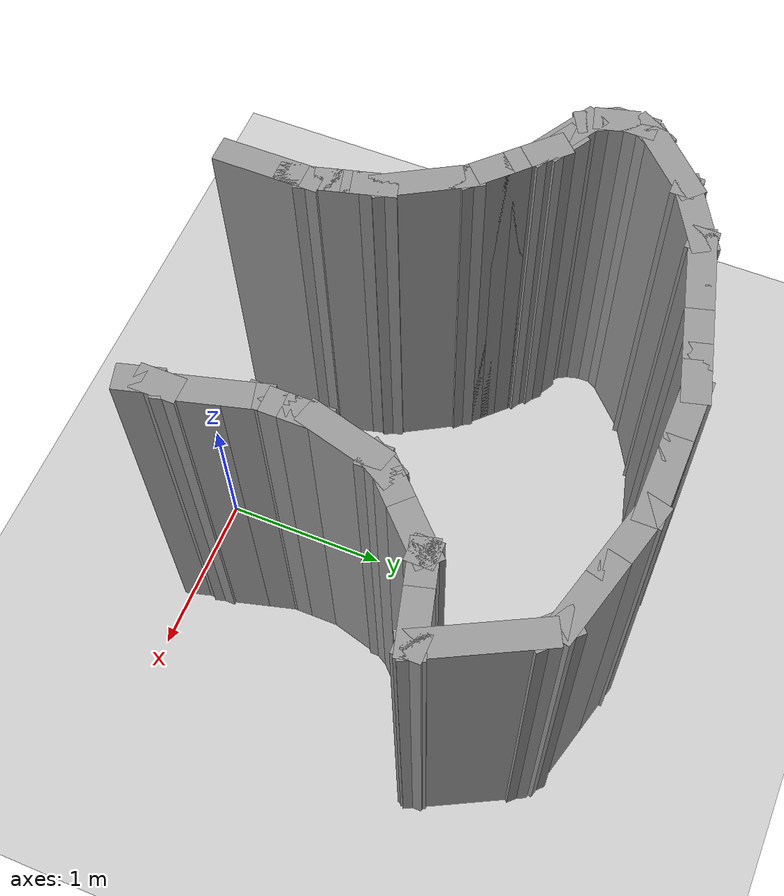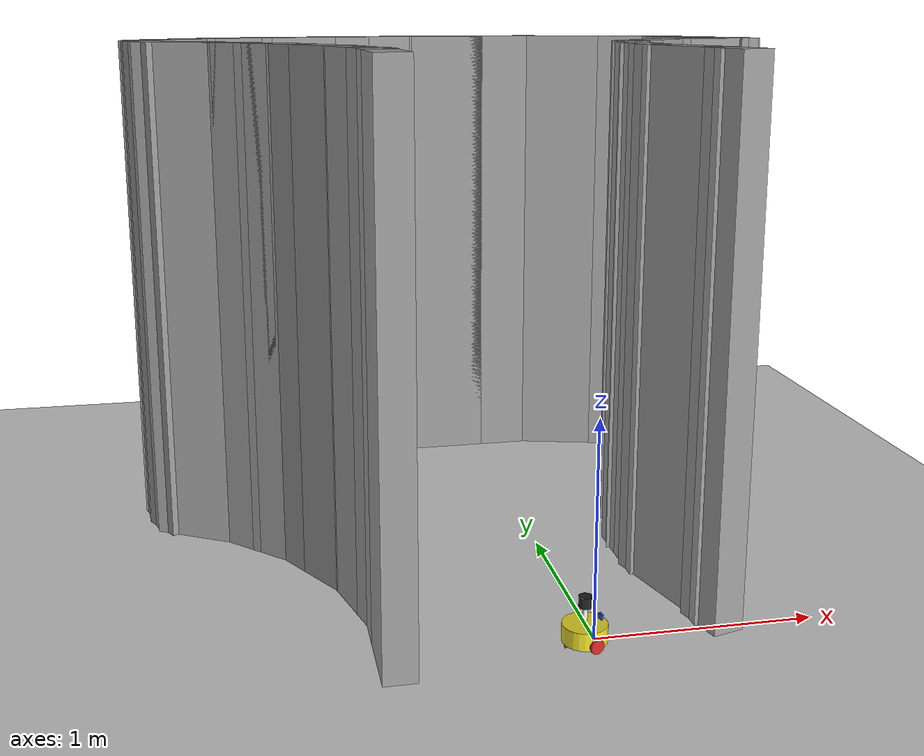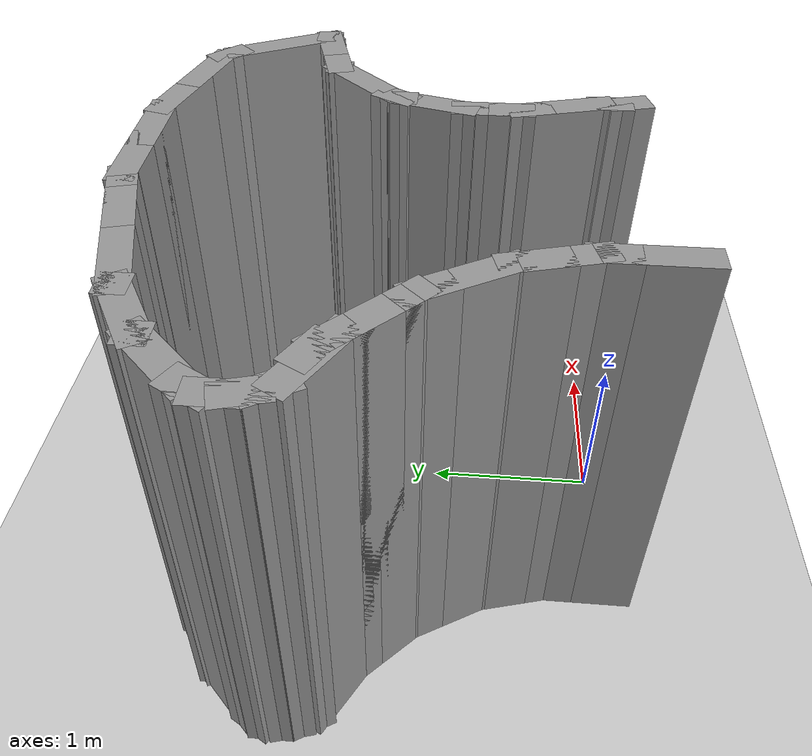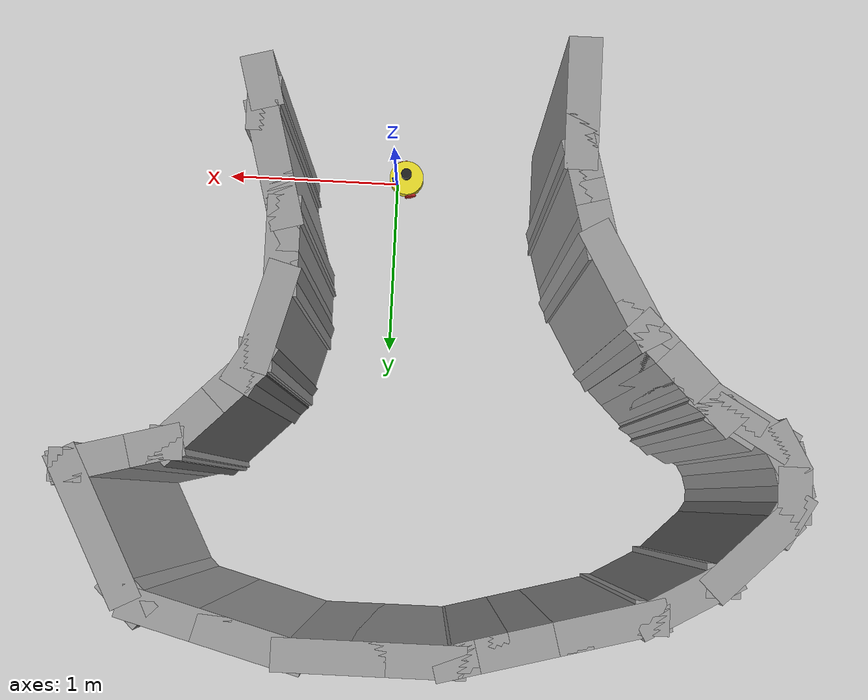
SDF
<sdf version="1.7">
 <world name="default">
  <model name="ground_plane">
   <static>1</static>
   <link name="link">
    <collision name="collision">
     <geometry><plane><normal>0 0 1</normal><size>100 100</size></plane></geometry>
     <surface>
      <contact><collide_bitmask>65535</collide_bitmask></contact>
      <friction><ode><mu>100</mu><mu2>50</mu2></ode></friction>
     </surface>
    </collision>
    <visual name="visual">
     <cast_shadows>0</cast_shadows>
     <geometry><plane><normal>0 0 1</normal><size>100 100</size></plane></geometry>
     <material>
      <script><uri>file://media/materials/scripts/gazebo.material</uri><name>Gazebo/Grey</name></script>
     </material>
    </visual>
   </link>
  </model>
  <model name="pool_robot">
   <link name="base_footprint">
    <inertial>
     <pose>0.00125 0 0.078945 0 -0 0</pose>
     <mass>0.64</mass>
     <inertia>
      <ixx>0.00325137</ixx>
      <ixy>0</ixy>
      <ixz>-2.28438e-05</ixz>
      <iyy>0.00331437</iyy>
      <iyz>0</iyz>
      <izz>0.00261021</izz>
     </inertia>
    </inertial>
    <collision name="base_footprint_fixed_joint_lump__base_link_collision">
     <pose>0 0 0.055 0 -0 0</pose>
     <geometry><cylinder><length>0.08</length><radius>0.1</radius></cylinder></geometry>
    </collision>
    <collision name="base_footprint_fixed_joint_lump__camera_collision_1">
     <pose>0.08 0 0.1075 0 -0 0</pose>
     <geometry><box><size>0.01 0.025 0.025</size></box></geometry>
    </collision>
    <collision name="base_footprint_fixed_joint_lump__imu_collision_2">
     <pose>0 0 0.055 0 -0 0</pose>
     <geometry><box><size>0.01 0.01 0.01</size></box></geometry>
    </collision>
    <collision name="base_footprint_fixed_joint_lump__support_collision_3">
     <pose>0 0 0.095 0 -0 0</pose>
     <geometry><cylinder><length>0.15</length><radius>0.01</radius></cylinder></geometry>
    </collision>
    <collision name="base_footprint_fixed_joint_lump__laser_collision_4">
     <pose>0 0 0.195 0 -0 0</pose>
     <geometry><cylinder><length>0.05</length><radius>0.03</radius></cylinder></geometry>
    </collision>
    <visual name="base_footprint_visual"><geometry><sphere><radius>0.001</radius></sphere></geometry></visual>
    <visual name="base_footprint_fixed_joint_lump__base_link_visual_1">
     <pose>0 0 0.055 0 -0 0</pose>
     <geometry><cylinder><length>0.08</length><radius>0.1</radius></cylinder></geometry>
     <material>
      <script><name>Gazebo/Yellow</name><uri>file://media/materials/scripts/gazebo.material</uri></script>
     </material>
    </visual>
    <visual name="base_footprint_fixed_joint_lump__camera_visual_2">
     <pose>0.08 0 0.1075 0 -0 0</pose>
     <geometry><box><size>0.01 0.025 0.025</size></box></geometry>
     <material>
      <script><name>Gazebo/Blue</name><uri>file://media/materials/scripts/gazebo.material</uri></script>
     </material>
    </visual>
    <visual name="base_footprint_fixed_joint_lump__imu_visual_3">
     <pose>0 0 0.055 0 -0 0</pose>
     <geometry><box><size>0.01 0.01 0.01</size></box></geometry>
     <material>
      <script><name>Gazebo/Red</name><uri>file://media/materials/scripts/gazebo.material</uri></script>
     </material>
    </visual>
    <visual name="base_footprint_fixed_joint_lump__support_visual_4">
     <pose>0 0 0.095 0 -0 0</pose>
     <geometry><cylinder><length>0.15</length><radius>0.01</radius></cylinder></geometry>
     <material>
      <script><name>Gazebo/White</name><uri>file://media/materials/scripts/gazebo.material</uri></script>
     </material>
    </visual>
    <visual name="base_footprint_fixed_joint_lump__laser_visual_5">
     <pose>0 0 0.195 0 -0 0</pose>
     <geometry><cylinder><length>0.05</length><radius>0.03</radius></cylinder></geometry>
     <material>
      <script><name>Gazebo/Black</name><uri>file://media/materials/scripts/gazebo.material</uri></script>
     </material>
    </visual>
    <sensor name="imu_sensor" type="imu">
     <always_on>1</always_on>
     <update_rate>100</update_rate>
     <visualize>1</visualize>
     <topic>__default_topic__</topic>
     <plugin name="imu_plugin" filename="libgazebo_ros_imu_sensor.so">
      <topicName>imu</topicName>
      <bodyName>imu</bodyName>
      <updateRateHZ>100.0</updateRateHZ>
      <gaussianNoise>0.0</gaussianNoise>
      <xyzOffset>0 0 0</xyzOffset>
      <rpyOffset>0 0 0</rpyOffset>
      <frameName>imu</frameName>
      <robotNamespace>/</robotNamespace>
     </plugin>
     <pose>0 0 0.055 0 -0 0</pose>
    </sensor>
    <sensor name="rplidar" type="ray">
     <visualize>1</visualize>
     <update_rate>5.5</update_rate>
     <ray>
      <scan>
       <horizontal>
        <samples>360</samples>
        <resolution>1</resolution>
        <min_angle>0</min_angle>
        <max_angle>360</max_angle>
       </horizontal>
       <vertical><samples>1</samples><min_angle>0</min_angle><max_angle>0</max_angle></vertical>
      </scan>
      <range><min>0.1</min><max>3</max><resolution>0.01</resolution></range>
      <noise><type>gaussian</type><mean>0</mean><stddev>0.01</stddev></noise>
     </ray>
     <plugin name="gazebo_rplidar" filename="libgazebo_ros_laser.so">
      <topicName>/scan</topicName>
      <frameName>laser</frameName>
      <robotNamespace>/</robotNamespace>
     </plugin>
     <pose>0 0 0.195 0 -0 0</pose>
    </sensor>
   </link>
   <joint name="back_wheel2base_link" type="revolute">
    <pose relative_to="base_footprint">-0.0925 0 0.0075 0 -0 0</pose>
    <parent>base_footprint</parent>
    <child>back_wheel</child>
    <axis>
     <xyz>1 1 1</xyz>
     <limit><lower>-1e+16</lower><upper>1e+16</upper></limit>
     <dynamics><spring_reference>0</spring_reference><spring_stiffness>0</spring_stiffness></dynamics>
    </axis>
   </joint>
   <link name="back_wheel">
    <pose relative_to="back_wheel2base_link">0 0 0 0 -0 0</pose>
    <inertial>
     <mass>0.03</mass>
     <inertia>
      <ixx>6.75e-07</ixx>
      <ixy>0</ixy>
      <ixz>0</ixz>
      <iyy>6.75e-07</iyy>
      <iyz>0</iyz>
      <izz>6.75e-07</izz>
     </inertia>
    </inertial>
    <collision name="back_wheel_collision">
     <geometry><sphere><radius>0.0075</radius></sphere></geometry>
    </collision>
    <visual name="back_wheel_visual">
     <geometry><sphere><radius>0.0075</radius></sphere></geometry>
     <material>
      <script><name>Gazebo/Red</name><uri>file://media/materials/scripts/gazebo.material</uri></script>
     </material>
    </visual>
   </link>
   <joint name="front_wheel2base_link" type="revolute">
    <pose relative_to="base_footprint">0.0925 0 0.0075 0 -0 0</pose>
    <parent>base_footprint</parent>
    <child>front_wheel</child>
    <axis>
     <xyz>1 1 1</xyz>
     <limit><lower>-1e+16</lower><upper>1e+16</upper></limit>
     <dynamics><spring_reference>0</spring_reference><spring_stiffness>0</spring_stiffness></dynamics>
    </axis>
   </joint>
   <link name="front_wheel">
    <pose relative_to="front_wheel2base_link">0 0 0 0 -0 0</pose>
    <inertial>
     <mass>0.03</mass>
     <inertia>
      <ixx>6.75e-07</ixx>
      <ixy>0</ixy>
      <ixz>0</ixz>
      <iyy>6.75e-07</iyy>
      <iyz>0</iyz>
      <izz>6.75e-07</izz>
     </inertia>
    </inertial>
    <collision name="front_wheel_collision">
     <geometry><sphere><radius>0.0075</radius></sphere></geometry>
    </collision>
    <visual name="front_wheel_visual">
     <geometry><sphere><radius>0.0075</radius></sphere></geometry>
     <material>
      <script><name>Gazebo/Red</name><uri>file://media/materials/scripts/gazebo.material</uri></script>
     </material>
    </visual>
   </link>
   <joint name="left_wheel2base_link" type="revolute">
    <pose relative_to="base_footprint">0 0.1 0.0325 0 -0 0</pose>
    <parent>base_footprint</parent>
    <child>left_wheel</child>
    <axis>
     <xyz>0 1 0</xyz>
     <limit><lower>-1e+16</lower><upper>1e+16</upper></limit>
     <dynamics><spring_reference>0</spring_reference><spring_stiffness>0</spring_stiffness></dynamics>
    </axis>
   </joint>
   <link name="left_wheel">
    <pose relative_to="left_wheel2base_link">0 0 0 0 -0 0</pose>
    <inertial>
     <mass>0.05</mass>
     <inertia>
      <ixx>1.41406e-05</ixx>
      <ixy>0</ixy>
      <ixz>0</ixz>
      <iyy>1.41406e-05</iyy>
      <iyz>0</iyz>
      <izz>2.64063e-05</izz>
     </inertia>
    </inertial>
    <collision name="left_wheel_collision">
     <pose>0 0 0 1.5708 -0 0</pose>
     <geometry><cylinder><length>0.015</length><radius>0.0325</radius></cylinder></geometry>
    </collision>
    <visual name="left_wheel_visual">
     <pose>0 0 0 1.5708 -0 0</pose>
     <geometry><cylinder><length>0.015</length><radius>0.0325</radius></cylinder></geometry>
     <material>
      <script><name>Gazebo/Red</name><uri>file://media/materials/scripts/gazebo.material</uri></script>
     </material>
    </visual>
   </link>
   <joint name="right_wheel2base_link" type="revolute">
    <pose relative_to="base_footprint">0 -0.1 0.0325 0 -0 0</pose>
    <parent>base_footprint</parent>
    <child>right_wheel</child>
    <axis>
     <xyz>0 1 0</xyz>
     <limit><lower>-1e+16</lower><upper>1e+16</upper></limit>
     <dynamics><spring_reference>0</spring_reference><spring_stiffness>0</spring_stiffness></dynamics>
    </axis>
   </joint>
   <link name="right_wheel">
    <pose relative_to="right_wheel2base_link">0 0 0 0 -0 0</pose>
    <inertial>
     <mass>0.05</mass>
     <inertia>
      <ixx>1.41406e-05</ixx>
      <ixy>0</ixy>
      <ixz>0</ixz>
      <iyy>1.41406e-05</iyy>
      <iyz>0</iyz>
      <izz>2.64063e-05</izz>
     </inertia>
    </inertial>
    <collision name="right_wheel_collision">
     <pose>0 0 0 1.5708 -0 0</pose>
     <geometry><cylinder><length>0.015</length><radius>0.0325</radius></cylinder></geometry>
    </collision>
    <visual name="right_wheel_visual">
     <pose>0 0 0 1.5708 -0 0</pose>
     <geometry><cylinder><length>0.015</length><radius>0.0325</radius></cylinder></geometry>
     <material>
      <script><name>Gazebo/Red</name><uri>file://media/materials/scripts/gazebo.material</uri></script>
     </material>
    </visual>
   </link>
   <plugin name="differential_drive_controller" filename="libgazebo_ros_diff_drive.so">
    <rosDebugLevel>Debug</rosDebugLevel>
    <publishWheelTF>1</publishWheelTF>
    <robotNamespace>/</robotNamespace>
    <publishTf>1</publishTf>
    <publishWheelJointState>1</publishWheelJointState>
    <alwaysOn>1</alwaysOn>
    <updateRate>100.0</updateRate>
    <legacyMode>1</legacyMode>
    <leftJoint>left_wheel2base_link</leftJoint>
    <rightJoint>right_wheel2base_link</rightJoint>
    <wheelSeparation>0.2</wheelSeparation>
    <wheelDiameter>0.065</wheelDiameter>
    <broadcastTF>1</broadcastTF>
    <wheelTorque>30</wheelTorque>
    <wheelAcceleration>1.8</wheelAcceleration>
    <commandTopic>cmd_vel</commandTopic>
    <odometryFrame>odom</odometryFrame>
    <odometryTopic>odom</odometryTopic>
    <robotBaseFrame>base_footprint</robotBaseFrame>
   </plugin>
   <frame name="camera2base_link" attached_to="base_link"><pose>0.08 0 0.0525 0 -0 0</pose></frame>
   <frame name="camera" attached_to="camera2base_link"/>
   <frame name="imu2base_link" attached_to="base_link"/>
   <frame name="imu" attached_to="imu2base_link"/>
   <frame name="laser2support" attached_to="support"><pose>0 0 0.1 0 -0 0</pose></frame>
   <frame name="laser" attached_to="laser2support"/>
   <frame name="support2base_link" attached_to="base_link"><pose>0 0 0.04 0 -0 0</pose></frame>
   <frame name="support" attached_to="support2base_link"/>
   <frame name="base_link2base_footprint" attached_to="base_footprint"><pose>0 0 0.055 0 -0 0</pose></frame>
   <frame name="base_link" attached_to="base_link2base_footprint"/>
   <pose>-0.053591 -0.025871 0 0 -0 0.265443</pose>
  </model>
  <model name="spoll2">
   <pose>1.26645 -0.043503 0 0 -0 0</pose>
   <link name="Wall_222">
    <collision name="Wall_222_Collision">
     <geometry><box><size>0.25 0.15 2.5</size></box></geometry>
     <pose>0 0 1.25 0 -0 0</pose>
    </collision>
    <visual name="Wall_222_Visual">
     <pose>0 0 1.25 0 -0 0</pose>
     <geometry><box><size>0.25 0.15 2.5</size></box></geometry>
     <material>
      <script><uri>file://media/materials/scripts/gazebo.material</uri><name>Gazebo/Grey</name></script>
      <ambient>1 1 1 1</ambient>
     </material>
     <meta><layer>0</layer></meta>
    </visual>
    <pose>-2.8675 1.51416 0 0 -0 -0.523599</pose>
   </link>
   <link name="Wall_223">
    <collision name="Wall_223_Collision">
     <geometry><box><size>0.25 0.15 2.5</size></box></geometry>
     <pose>0 0 1.25 0 -0 0</pose>
    </collision>
    <visual name="Wall_223_Visual">
     <pose>0 0 1.25 0 -0 0</pose>
     <geometry><box><size>0.25 0.15 2.5</size></box></geometry>
     <material>
      <script><uri>file://media/materials/scripts/gazebo.material</uri><name>Gazebo/Grey</name></script>
      <ambient>1 1 1 1</ambient>
     </material>
     <meta><layer>0</layer></meta>
    </visual>
    <pose>-2.78885 1.45381 0 0 -0 -0.785398</pose>
   </link>
   <link name="Wall_224">
    <collision name="Wall_224_Collision">
     <geometry><box><size>0.25 0.15 2.5</size></box></geometry>
     <pose>0 0 1.25 0 -0 0</pose>
    </collision>
    <visual name="Wall_224_Visual">
     <pose>0 0 1.25 0 -0 0</pose>
     <geometry><box><size>0.25 0.15 2.5</size></box></geometry>
     <material>
      <script><uri>file://media/materials/scripts/gazebo.material</uri><name>Gazebo/Grey</name></script>
      <ambient>1 1 1 1</ambient>
     </material>
     <meta><layer>0</layer></meta>
    </visual>
    <pose>-2.71814 1.3831 0 0 -0 -0.785398</pose>
   </link>
   <link name="Wall_225">
    <collision name="Wall_225_Collision">
     <geometry><box><size>0.25 0.15 2.5</size></box></geometry>
     <pose>0 0 1.25 0 -0 0</pose>
    </collision>
    <visual name="Wall_225_Visual">
     <pose>0 0 1.25 0 -0 0</pose>
     <geometry><box><size>0.25 0.15 2.5</size></box></geometry>
     <material>
      <script><uri>file://media/materials/scripts/gazebo.material</uri><name>Gazebo/Grey</name></script>
      <ambient>1 1 1 1</ambient>
     </material>
     <meta><layer>0</layer></meta>
    </visual>
    <pose>-2.64743 1.31239 0 0 -0 -0.785398</pose>
   </link>
   <link name="Wall_226">
    <collision name="Wall_226_Collision">
     <geometry><box><size>0.25 0.15 2.5</size></box></geometry>
     <pose>0 0 1.25 0 -0 0</pose>
    </collision>
    <visual name="Wall_226_Visual">
     <pose>0 0 1.25 0 -0 0</pose>
     <geometry><box><size>0.25 0.15 2.5</size></box></geometry>
     <material>
      <script><uri>file://media/materials/scripts/gazebo.material</uri><name>Gazebo/Grey</name></script>
      <ambient>1 1 1 1</ambient>
     </material>
     <meta><layer>0</layer></meta>
    </visual>
    <pose>-2.57672 1.24168 0 0 -0 -0.785398</pose>
   </link>
   <link name="Wall_227">
    <collision name="Wall_227_Collision">
     <geometry><box><size>0.25 0.15 2.5</size></box></geometry>
     <pose>0 0 1.25 0 -0 0</pose>
    </collision>
    <visual name="Wall_227_Visual">
     <pose>0 0 1.25 0 -0 0</pose>
     <geometry><box><size>0.25 0.15 2.5</size></box></geometry>
     <material>
      <script><uri>file://media/materials/scripts/gazebo.material</uri><name>Gazebo/Grey</name></script>
      <ambient>1 1 1 1</ambient>
     </material>
     <meta><layer>0</layer></meta>
    </visual>
    <pose>-2.50601 1.17097 0 0 -0 -0.785398</pose>
   </link>
   <link name="Wall_228">
    <collision name="Wall_228_Collision">
     <geometry><box><size>0.25 0.15 2.5</size></box></geometry>
     <pose>0 0 1.25 0 -0 0</pose>
    </collision>
    <visual name="Wall_228_Visual">
     <pose>0 0 1.25 0 -0 0</pose>
     <geometry><box><size>0.25 0.15 2.5</size></box></geometry>
     <material>
      <script><uri>file://media/materials/scripts/gazebo.material</uri><name>Gazebo/Grey</name></script>
      <ambient>1 1 1 1</ambient>
     </material>
     <meta><layer>0</layer></meta>
    </visual>
    <pose>-2.44565 1.09231 0 0 -0 -1.0472</pose>
   </link>
   <link name="Wall_229">
    <collision name="Wall_229_Collision">
     <geometry><box><size>0.5 0.15 2.5</size></box></geometry>
     <pose>0 0 1.25 0 -0 0</pose>
    </collision>
    <visual name="Wall_229_Visual">
     <pose>0 0 1.25 0 -0 0</pose>
     <geometry><box><size>0.5 0.15 2.5</size></box></geometry>
     <material>
      <script><uri>file://media/materials/scripts/gazebo.material</uri><name>Gazebo/Grey</name></script>
      <ambient>1 1 1 1</ambient>
     </material>
     <meta><layer>0</layer></meta>
    </visual>
    <pose>-2.33315 0.897455 0 0 -0 -1.0472</pose>
   </link>
   <link name="Wall_230">
    <collision name="Wall_230_Collision">
     <geometry><box><size>0.25 0.15 2.5</size></box></geometry>
     <pose>0 0 1.25 0 -0 0</pose>
    </collision>
    <visual name="Wall_230_Visual">
     <pose>0 0 1.25 0 -0 0</pose>
     <geometry><box><size>0.25 0.15 2.5</size></box></geometry>
     <material>
      <script><uri>file://media/materials/scripts/gazebo.material</uri><name>Gazebo/Grey</name></script>
      <ambient>1 1 1 1</ambient>
     </material>
     <meta><layer>0</layer></meta>
    </visual>
    <pose>-2.23271 0.697604 0 0 -0 -1.309</pose>
   </link>
   <link name="Wall_231">
    <collision name="Wall_231_Collision">
     <geometry><box><size>0.25 0.15 2.5</size></box></geometry>
     <pose>0 0 1.25 0 -0 0</pose>
    </collision>
    <visual name="Wall_231_Visual">
     <pose>0 0 1.25 0 -0 0</pose>
     <geometry><box><size>0.25 0.15 2.5</size></box></geometry>
     <material>
      <script><uri>file://media/materials/scripts/gazebo.material</uri><name>Gazebo/Grey</name></script>
      <ambient>1 1 1 1</ambient>
     </material>
     <meta><layer>0</layer></meta>
    </visual>
    <pose>-2.20683 0.601012 0 0 -0 -1.309</pose>
   </link>
   <link name="Wall_232">
    <collision name="Wall_232_Collision">
     <geometry><box><size>0.25 0.15 2.5</size></box></geometry>
     <pose>0 0 1.25 0 -0 0</pose>
    </collision>
    <visual name="Wall_232_Visual">
     <pose>0 0 1.25 0 -0 0</pose>
     <geometry><box><size>0.25 0.15 2.5</size></box></geometry>
     <material>
      <script><uri>file://media/materials/scripts/gazebo.material</uri><name>Gazebo/Grey</name></script>
      <ambient>1 1 1 1</ambient>
     </material>
     <meta><layer>0</layer></meta>
    </visual>
    <pose>-2.18094 0.504419 0 0 -0 -1.309</pose>
   </link>
   <link name="Wall_233">
    <collision name="Wall_233_Collision">
     <geometry><box><size>0.25 0.15 2.5</size></box></geometry>
     <pose>0 0 1.25 0 -0 0</pose>
    </collision>
    <visual name="Wall_233_Visual">
     <pose>0 0 1.25 0 -0 0</pose>
     <geometry><box><size>0.25 0.15 2.5</size></box></geometry>
     <material>
      <script><uri>file://media/materials/scripts/gazebo.material</uri><name>Gazebo/Grey</name></script>
      <ambient>1 1 1 1</ambient>
     </material>
     <meta><layer>0</layer></meta>
    </visual>
    <pose>-2.15506 0.407827 0 0 -0 -1.309</pose>
   </link>
   <link name="Wall_234">
    <collision name="Wall_234_Collision">
     <geometry><box><size>0.25 0.15 2.5</size></box></geometry>
     <pose>0 0 1.25 0 -0 0</pose>
    </collision>
    <visual name="Wall_234_Visual">
     <pose>0 0 1.25 0 -0 0</pose>
     <geometry><box><size>0.25 0.15 2.5</size></box></geometry>
     <material>
      <script><uri>file://media/materials/scripts/gazebo.material</uri><name>Gazebo/Grey</name></script>
      <ambient>1 1 1 1</ambient>
     </material>
     <meta><layer>0</layer></meta>
    </visual>
    <pose>-2.14212 0.30953 0 0 -0 -1.5708</pose>
   </link>
   <link name="Wall_235">
    <collision name="Wall_235_Collision">
     <geometry><box><size>0.5 0.15 2.5</size></box></geometry>
     <pose>0 0 1.25 0 -0 0</pose>
    </collision>
    <visual name="Wall_235_Visual">
     <pose>0 0 1.25 0 -0 0</pose>
     <geometry><box><size>0.5 0.15 2.5</size></box></geometry>
     <material>
      <script><uri>file://media/materials/scripts/gazebo.material</uri><name>Gazebo/Grey</name></script>
      <ambient>1 1 1 1</ambient>
     </material>
     <meta><layer>0</layer></meta>
    </visual>
    <pose>-2.14212 0.08453 0 0 -0 -1.5708</pose>
   </link>
   <link name="Wall_316">
    <collision name="Wall_316_Collision">
     <geometry><box><size>0.25 0.15 2.5</size></box></geometry>
     <pose>0 0 1.25 0 -0 0</pose>
    </collision>
    <visual name="Wall_316_Visual">
     <pose>0 0 1.25 0 -0 0</pose>
     <geometry><box><size>0.25 0.15 2.5</size></box></geometry>
     <material>
      <script><uri>file://media/materials/scripts/gazebo.material</uri><name>Gazebo/Grey</name></script>
      <ambient>1 1 1 1</ambient>
     </material>
     <meta><layer>0</layer></meta>
    </visual>
    <pose>-0.711 0.101847 0 0 -0 1.8326</pose>
   </link>
   <link name="Wall_317">
    <collision name="Wall_317_Collision">
     <geometry><box><size>0.25 0.15 2.5</size></box></geometry>
     <pose>0 0 1.25 0 -0 0</pose>
    </collision>
    <visual name="Wall_317_Visual">
     <pose>0 0 1.25 0 -0 0</pose>
     <geometry><box><size>0.25 0.15 2.5</size></box></geometry>
     <material>
      <script><uri>file://media/materials/scripts/gazebo.material</uri><name>Gazebo/Grey</name></script>
      <ambient>1 1 1 1</ambient>
     </material>
     <meta><layer>0</layer></meta>
    </visual>
    <pose>-0.723941 0.200143 0 0 -0 1.5708</pose>
   </link>
   <link name="Wall_318">
    <collision name="Wall_318_Collision">
     <geometry><box><size>0.5 0.15 2.5</size></box></geometry>
     <pose>0 0 1.25 0 -0 0</pose>
    </collision>
    <visual name="Wall_318_Visual">
     <pose>0 0 1.25 0 -0 0</pose>
     <geometry><box><size>0.5 0.15 2.5</size></box></geometry>
     <material>
      <script><uri>file://media/materials/scripts/gazebo.material</uri><name>Gazebo/Grey</name></script>
      <ambient>1 1 1 1</ambient>
     </material>
     <meta><layer>0</layer></meta>
    </visual>
    <pose>-0.769235 0.41918 0 0 -0 1.8326</pose>
   </link>
   <link name="Wall_319">
    <collision name="Wall_319_Collision">
     <geometry><box><size>0.25 0.15 2.5</size></box></geometry>
     <pose>0 0 1.25 0 -0 0</pose>
    </collision>
    <visual name="Wall_319_Visual">
     <pose>0 0 1.25 0 -0 0</pose>
     <geometry><box><size>0.25 0.15 2.5</size></box></geometry>
     <material>
      <script><uri>file://media/materials/scripts/gazebo.material</uri><name>Gazebo/Grey</name></script>
      <ambient>1 1 1 1</ambient>
     </material>
     <meta><layer>0</layer></meta>
    </visual>
    <pose>-0.827469 0.636513 0 0 -0 1.8326</pose>
   </link>
   <link name="Wall_320">
    <collision name="Wall_320_Collision">
     <geometry><box><size>0.25 0.15 2.5</size></box></geometry>
     <pose>0 0 1.25 0 -0 0</pose>
    </collision>
    <visual name="Wall_320_Visual">
     <pose>0 0 1.25 0 -0 0</pose>
     <geometry><box><size>0.25 0.15 2.5</size></box></geometry>
     <material>
      <script><uri>file://media/materials/scripts/gazebo.material</uri><name>Gazebo/Grey</name></script>
      <ambient>1 1 1 1</ambient>
     </material>
     <meta><layer>0</layer></meta>
    </visual>
    <pose>-0.84041 0.73481 0 0 -0 1.5708</pose>
   </link>
   <link name="Wall_321">
    <collision name="Wall_321_Collision">
     <geometry><box><size>0.25 0.15 2.5</size></box></geometry>
     <pose>0 0 1.25 0 -0 0</pose>
    </collision>
    <visual name="Wall_321_Visual">
     <pose>0 0 1.25 0 -0 0</pose>
     <geometry><box><size>0.25 0.15 2.5</size></box></geometry>
     <material>
      <script><uri>file://media/materials/scripts/gazebo.material</uri><name>Gazebo/Grey</name></script>
      <ambient>1 1 1 1</ambient>
     </material>
     <meta><layer>0</layer></meta>
    </visual>
    <pose>-0.84041 0.83481 0 0 -0 1.5708</pose>
   </link>
   <link name="Wall_322">
    <collision name="Wall_322_Collision">
     <geometry><box><size>0.25 0.15 2.5</size></box></geometry>
     <pose>0 0 1.25 0 -0 0</pose>
    </collision>
    <visual name="Wall_322_Visual">
     <pose>0 0 1.25 0 -0 0</pose>
     <geometry><box><size>0.25 0.15 2.5</size></box></geometry>
     <material>
      <script><uri>file://media/materials/scripts/gazebo.material</uri><name>Gazebo/Grey</name></script>
      <ambient>1 1 1 1</ambient>
     </material>
     <meta><layer>0</layer></meta>
    </visual>
    <pose>-0.84041 0.93481 0 0 -0 1.5708</pose>
   </link>
   <link name="Wall_323">
    <collision name="Wall_323_Collision">
     <geometry><box><size>0.5 0.15 2.5</size></box></geometry>
     <pose>0 0 1.25 0 -0 0</pose>
    </collision>
    <visual name="Wall_323_Visual">
     <pose>0 0 1.25 0 -0 0</pose>
     <geometry><box><size>0.5 0.15 2.5</size></box></geometry>
     <material>
      <script><uri>file://media/materials/scripts/gazebo.material</uri><name>Gazebo/Grey</name></script>
      <ambient>1 1 1 1</ambient>
     </material>
     <meta><layer>0</layer></meta>
    </visual>
    <pose>-0.795116 1.15385 0 0 -0 1.309</pose>
   </link>
   <link name="Wall_324">
    <collision name="Wall_324_Collision">
     <geometry><box><size>0.15 0.15 2.5</size></box></geometry>
     <pose>0 0 1.25 0 -0 0</pose>
    </collision>
    <visual name="Wall_324_Visual">
     <pose>0 0 1.25 0 -0 0</pose>
     <geometry><box><size>0.15 0.15 2.5</size></box></geometry>
     <material>
      <script><uri>file://media/materials/scripts/gazebo.material</uri><name>Gazebo/Grey</name></script>
      <ambient>1 1 1 1</ambient>
     </material>
     <meta><layer>0</layer></meta>
    </visual>
    <pose>-0.749823 1.32288 0 0 -0 0</pose>
   </link>
   <link name="Wall_325">
    <collision name="Wall_325_Collision">
     <geometry><box><size>0.25 0.15 2.5</size></box></geometry>
     <pose>0 0 1.25 0 -0 0</pose>
    </collision>
    <visual name="Wall_325_Visual">
     <pose>0 0 1.25 0 -0 0</pose>
     <geometry><box><size>0.25 0.15 2.5</size></box></geometry>
     <material>
      <script><uri>file://media/materials/scripts/gazebo.material</uri><name>Gazebo/Grey</name></script>
      <ambient>1 1 1 1</ambient>
     </material>
     <meta><layer>0</layer></meta>
    </visual>
    <pose>-0.724823 1.36618 0 0 -0 1.0472</pose>
   </link>
   <link name="Wall_326">
    <collision name="Wall_326_Collision">
     <geometry><box><size>0.25 0.15 2.5</size></box></geometry>
     <pose>0 0 1.25 0 -0 0</pose>
    </collision>
    <visual name="Wall_326_Visual">
     <pose>0 0 1.25 0 -0 0</pose>
     <geometry><box><size>0.25 0.15 2.5</size></box></geometry>
     <material>
      <script><uri>file://media/materials/scripts/gazebo.material</uri><name>Gazebo/Grey</name></script>
      <ambient>1 1 1 1</ambient>
     </material>
     <meta><layer>0</layer></meta>
    </visual>
    <pose>-0.664468 1.44484 0 0 -0 0.785398</pose>
   </link>
   <link name="Wall_327">
    <collision name="Wall_327_Collision">
     <geometry><box><size>0.5 0.15 2.5</size></box></geometry>
     <pose>0 0 1.25 0 -0 0</pose>
    </collision>
    <visual name="Wall_327_Visual">
     <pose>0 0 1.25 0 -0 0</pose>
     <geometry><box><size>0.5 0.15 2.5</size></box></geometry>
     <material>
      <script><uri>file://media/materials/scripts/gazebo.material</uri><name>Gazebo/Grey</name></script>
      <ambient>1 1 1 1</ambient>
     </material>
     <meta><layer>0</layer></meta>
    </visual>
    <pose>-0.505369 1.60394 0 0 -0 0.785398</pose>
   </link>
   <link name="Wall_328">
    <collision name="Wall_328_Collision">
     <geometry><box><size>0.15 0.15 2.5</size></box></geometry>
     <pose>0 0 1.25 0 -0 0</pose>
    </collision>
    <visual name="Wall_328_Visual">
     <pose>0 0 1.25 0 -0 0</pose>
     <geometry><box><size>0.15 0.15 2.5</size></box></geometry>
     <material>
      <script><uri>file://media/materials/scripts/gazebo.material</uri><name>Gazebo/Grey</name></script>
      <ambient>1 1 1 1</ambient>
     </material>
     <meta><layer>0</layer></meta>
    </visual>
    <pose>-0.381625 1.72768 0 0 -0 0</pose>
   </link>
   <link name="Wall_329">
    <collision name="Wall_329_Collision">
     <geometry><box><size>0.25 0.15 2.5</size></box></geometry>
     <pose>0 0 1.25 0 -0 0</pose>
    </collision>
    <visual name="Wall_329_Visual">
     <pose>0 0 1.25 0 -0 0</pose>
     <geometry><box><size>0.25 0.15 2.5</size></box></geometry>
     <material>
      <script><uri>file://media/materials/scripts/gazebo.material</uri><name>Gazebo/Grey</name></script>
      <ambient>1 1 1 1</ambient>
     </material>
     <meta><layer>0</layer></meta>
    </visual>
    <pose>-0.333329 1.74063 0 0 -0 0.261799</pose>
   </link>
   <link name="Wall_330">
    <collision name="Wall_330_Collision">
     <geometry><box><size>0.5 0.15 2.5</size></box></geometry>
     <pose>0 0 1.25 0 -0 0</pose>
    </collision>
    <visual name="Wall_330_Visual">
     <pose>0 0 1.25 0 -0 0</pose>
     <geometry><box><size>0.5 0.15 2.5</size></box></geometry>
     <material>
      <script><uri>file://media/materials/scripts/gazebo.material</uri><name>Gazebo/Grey</name></script>
      <ambient>1 1 1 1</ambient>
     </material>
     <meta><layer>0</layer></meta>
    </visual>
    <pose>-0.115995 1.79886 0 0 -0 0.261799</pose>
   </link>
   <link name="Wall_331">
    <collision name="Wall_331_Collision">
     <geometry><box><size>0.15 0.15 2.5</size></box></geometry>
     <pose>0 0 1.25 0 -0 0</pose>
    </collision>
    <visual name="Wall_331_Visual">
     <pose>0 0 1.25 0 -0 0</pose>
     <geometry><box><size>0.15 0.15 2.5</size></box></geometry>
     <material>
      <script><uri>file://media/materials/scripts/gazebo.material</uri><name>Gazebo/Grey</name></script>
      <ambient>1 1 1 1</ambient>
     </material>
     <meta><layer>0</layer></meta>
    </visual>
    <pose>0.053041 1.84415 0 0 -0 0</pose>
   </link>
   <link name="Wall_333">
    <collision name="Wall_333_Collision">
     <geometry><box><size>0.5 0.15 2.5</size></box></geometry>
     <pose>0 0 1.25 0 -0 0</pose>
    </collision>
    <visual name="Wall_333_Visual">
     <pose>0 0 1.25 0 -0 0</pose>
     <geometry><box><size>0.5 0.15 2.5</size></box></geometry>
     <material>
      <script><uri>file://media/materials/scripts/gazebo.material</uri><name>Gazebo/Grey</name></script>
      <ambient>1 1 1 1</ambient>
     </material>
     <meta><layer>0</layer></meta>
    </visual>
    <pose>-2.90505 1.50595 0 0 -0 2.61799</pose>
   </link>
   <link name="Wall_334">
    <collision name="Wall_334_Collision">
     <geometry><box><size>0.25 0.15 2.5</size></box></geometry>
     <pose>0 0 1.25 0 -0 0</pose>
    </collision>
    <visual name="Wall_334_Visual">
     <pose>0 0 1.25 0 -0 0</pose>
     <geometry><box><size>0.25 0.15 2.5</size></box></geometry>
     <material>
      <script><uri>file://media/materials/scripts/gazebo.material</uri><name>Gazebo/Grey</name></script>
      <ambient>1 1 1 1</ambient>
     </material>
     <meta><layer>0</layer></meta>
    </visual>
    <pose>-3.0816 1.63676 0 0 -0 2.0944</pose>
   </link>
   <link name="Wall_335">
    <collision name="Wall_335_Collision">
     <geometry><box><size>0.25 0.15 2.5</size></box></geometry>
     <pose>0 0 1.25 0 -0 0</pose>
    </collision>
    <visual name="Wall_335_Visual">
     <pose>0 0 1.25 0 -0 0</pose>
     <geometry><box><size>0.25 0.15 2.5</size></box></geometry>
     <material>
      <script><uri>file://media/materials/scripts/gazebo.material</uri><name>Gazebo/Grey</name></script>
      <ambient>1 1 1 1</ambient>
     </material>
     <meta><layer>0</layer></meta>
    </visual>
    <pose>-3.11954 1.72835 0 0 -0 1.8326</pose>
   </link>
   <link name="Wall_336">
    <collision name="Wall_336_Collision">
     <geometry><box><size>0.25 0.15 2.5</size></box></geometry>
     <pose>0 0 1.25 0 -0 0</pose>
    </collision>
    <visual name="Wall_336_Visual">
     <pose>0 0 1.25 0 -0 0</pose>
     <geometry><box><size>0.25 0.15 2.5</size></box></geometry>
     <material>
      <script><uri>file://media/materials/scripts/gazebo.material</uri><name>Gazebo/Grey</name></script>
      <ambient>1 1 1 1</ambient>
     </material>
     <meta><layer>0</layer></meta>
    </visual>
    <pose>-3.13248 1.82665 0 0 -0 1.5708</pose>
   </link>
   <link name="Wall_337">
    <collision name="Wall_337_Collision">
     <geometry><box><size>0.25 0.15 2.5</size></box></geometry>
     <pose>0 0 1.25 0 -0 0</pose>
    </collision>
    <visual name="Wall_337_Visual">
     <pose>0 0 1.25 0 -0 0</pose>
     <geometry><box><size>0.25 0.15 2.5</size></box></geometry>
     <material>
      <script><uri>file://media/materials/scripts/gazebo.material</uri><name>Gazebo/Grey</name></script>
      <ambient>1 1 1 1</ambient>
     </material>
     <meta><layer>0</layer></meta>
    </visual>
    <pose>-3.10748 1.91995 0 0 -0 1.0472</pose>
   </link>
   <link name="Wall_338">
    <collision name="Wall_338_Collision">
     <geometry><box><size>0.5 0.15 2.5</size></box></geometry>
     <pose>0 0 1.25 0 -0 0</pose>
    </collision>
    <visual name="Wall_338_Visual">
     <pose>0 0 1.25 0 -0 0</pose>
     <geometry><box><size>0.5 0.15 2.5</size></box></geometry>
     <material>
      <script><uri>file://media/materials/scripts/gazebo.material</uri><name>Gazebo/Grey</name></script>
      <ambient>1 1 1 1</ambient>
     </material>
     <meta><layer>0</layer></meta>
    </visual>
    <pose>-2.95874 2.087 0 0 -0 0.785398</pose>
   </link>
   <link name="Wall_339">
    <collision name="Wall_339_Collision">
     <geometry><box><size>0.15 0.15 2.5</size></box></geometry>
     <pose>0 0 1.25 0 -0 0</pose>
    </collision>
    <visual name="Wall_339_Visual">
     <pose>0 0 1.25 0 -0 0</pose>
     <geometry><box><size>0.15 0.15 2.5</size></box></geometry>
     <material>
      <script><uri>file://media/materials/scripts/gazebo.material</uri><name>Gazebo/Grey</name></script>
      <ambient>1 1 1 1</ambient>
     </material>
     <meta><layer>0</layer></meta>
    </visual>
    <pose>-2.835 2.21074 0 0 -0 0</pose>
   </link>
   <link name="Wall_340">
    <collision name="Wall_340_Collision">
     <geometry><box><size>0.5 0.15 2.5</size></box></geometry>
     <pose>0 0 1.25 0 -0 0</pose>
    </collision>
    <visual name="Wall_340_Visual">
     <pose>0 0 1.25 0 -0 0</pose>
     <geometry><box><size>0.5 0.15 2.5</size></box></geometry>
     <material>
      <script><uri>file://media/materials/scripts/gazebo.material</uri><name>Gazebo/Grey</name></script>
      <ambient>1 1 1 1</ambient>
     </material>
     <meta><layer>0</layer></meta>
    </visual>
    <pose>-2.68344 2.29824 0 0 -0 0.523599</pose>
   </link>
   <link name="Wall_341">
    <collision name="Wall_341_Collision">
     <geometry><box><size>0.15 0.15 2.5</size></box></geometry>
     <pose>0 0 1.25 0 -0 0</pose>
    </collision>
    <visual name="Wall_341_Visual">
     <pose>0 0 1.25 0 -0 0</pose>
     <geometry><box><size>0.15 0.15 2.5</size></box></geometry>
     <material>
      <script><uri>file://media/materials/scripts/gazebo.material</uri><name>Gazebo/Grey</name></script>
      <ambient>1 1 1 1</ambient>
     </material>
     <meta><layer>0</layer></meta>
    </visual>
    <pose>-2.53189 2.38574 0 0 -0 0</pose>
   </link>
   <link name="Wall_342">
    <collision name="Wall_342_Collision">
     <geometry><box><size>0.5 0.15 2.5</size></box></geometry>
     <pose>0 0 1.25 0 -0 0</pose>
    </collision>
    <visual name="Wall_342_Visual">
     <pose>0 0 1.25 0 -0 0</pose>
     <geometry><box><size>0.5 0.15 2.5</size></box></geometry>
     <material>
      <script><uri>file://media/materials/scripts/gazebo.material</uri><name>Gazebo/Grey</name></script>
      <ambient>1 1 1 1</ambient>
     </material>
     <meta><layer>0</layer></meta>
    </visual>
    <pose>-2.36285 2.43103 0 0 -0 0.261799</pose>
   </link>
   <link name="Wall_343">
    <collision name="Wall_343_Collision">
     <geometry><box><size>0.5 0.15 2.5</size></box></geometry>
     <pose>0 0 1.25 0 -0 0</pose>
    </collision>
    <visual name="Wall_343_Visual">
     <pose>0 0 1.25 0 -0 0</pose>
     <geometry><box><size>0.5 0.15 2.5</size></box></geometry>
     <material>
      <script><uri>file://media/materials/scripts/gazebo.material</uri><name>Gazebo/Grey</name></script>
      <ambient>1 1 1 1</ambient>
     </material>
     <meta><layer>0</layer></meta>
    </visual>
    <pose>-2.02478 2.52162 0 0 -0 0.261799</pose>
   </link>
   <link name="Wall_344">
    <collision name="Wall_344_Collision">
     <geometry><box><size>0.25 0.15 2.5</size></box></geometry>
     <pose>0 0 1.25 0 -0 0</pose>
    </collision>
    <visual name="Wall_344_Visual">
     <pose>0 0 1.25 0 -0 0</pose>
     <geometry><box><size>0.25 0.15 2.5</size></box></geometry>
     <material>
      <script><uri>file://media/materials/scripts/gazebo.material</uri><name>Gazebo/Grey</name></script>
      <ambient>1 1 1 1</ambient>
     </material>
     <meta><layer>0</layer></meta>
    </visual>
    <pose>-1.80744 2.57985 0 0 -0 0.261799</pose>
   </link>
   <link name="Wall_345">
    <collision name="Wall_345_Collision">
     <geometry><box><size>0.25 0.15 2.5</size></box></geometry>
     <pose>0 0 1.25 0 -0 0</pose>
    </collision>
    <visual name="Wall_345_Visual">
     <pose>0 0 1.25 0 -0 0</pose>
     <geometry><box><size>0.25 0.15 2.5</size></box></geometry>
     <material>
      <script><uri>file://media/materials/scripts/gazebo.material</uri><name>Gazebo/Grey</name></script>
      <ambient>1 1 1 1</ambient>
     </material>
     <meta><layer>0</layer></meta>
    </visual>
    <pose>-1.71085 2.60574 0 0 -0 0.261799</pose>
   </link>
   <link name="Wall_346">
    <collision name="Wall_346_Collision">
     <geometry><box><size>0.5 0.15 2.5</size></box></geometry>
     <pose>0 0 1.25 0 -0 0</pose>
    </collision>
    <visual name="Wall_346_Visual">
     <pose>0 0 1.25 0 -0 0</pose>
     <geometry><box><size>0.5 0.15 2.5</size></box></geometry>
     <material>
      <script><uri>file://media/materials/scripts/gazebo.material</uri><name>Gazebo/Grey</name></script>
      <ambient>1 1 1 1</ambient>
     </material>
     <meta><layer>0</layer></meta>
    </visual>
    <pose>-1.48755 2.61868 0 0 -0 0</pose>
   </link>
   <link name="Wall_347">
    <collision name="Wall_347_Collision">
     <geometry><box><size>0.5 0.15 2.5</size></box></geometry>
     <pose>0 0 1.25 0 -0 0</pose>
    </collision>
    <visual name="Wall_347_Visual">
     <pose>0 0 1.25 0 -0 0</pose>
     <geometry><box><size>0.5 0.15 2.5</size></box></geometry>
     <material>
      <script><uri>file://media/materials/scripts/gazebo.material</uri><name>Gazebo/Grey</name></script>
      <ambient>1 1 1 1</ambient>
     </material>
     <meta><layer>0</layer></meta>
    </visual>
    <pose>-1.13755 2.61868 0 0 -0 0</pose>
   </link>
   <link name="Wall_348">
    <collision name="Wall_348_Collision">
     <geometry><box><size>0.5 0.15 2.5</size></box></geometry>
     <pose>0 0 1.25 0 -0 0</pose>
    </collision>
    <visual name="Wall_348_Visual">
     <pose>0 0 1.25 0 -0 0</pose>
     <geometry><box><size>0.5 0.15 2.5</size></box></geometry>
     <material>
      <script><uri>file://media/materials/scripts/gazebo.material</uri><name>Gazebo/Grey</name></script>
      <ambient>1 1 1 1</ambient>
     </material>
     <meta><layer>0</layer></meta>
    </visual>
    <pose>-0.793517 2.57338 0 0 -0 -0.261799</pose>
   </link>
   <link name="Wall_349">
    <collision name="Wall_349_Collision">
     <geometry><box><size>0.5 0.15 2.5</size></box></geometry>
     <pose>0 0 1.25 0 -0 0</pose>
    </collision>
    <visual name="Wall_349_Visual">
     <pose>0 0 1.25 0 -0 0</pose>
     <geometry><box><size>0.5 0.15 2.5</size></box></geometry>
     <material>
      <script><uri>file://media/materials/scripts/gazebo.material</uri><name>Gazebo/Grey</name></script>
      <ambient>1 1 1 1</ambient>
     </material>
     <meta><layer>0</layer></meta>
    </visual>
    <pose>-0.455443 2.4828 0 0 -0 -0.261799</pose>
   </link>
   <link name="Wall_350">
    <collision name="Wall_350_Collision">
     <geometry><box><size>0.25 0.15 2.5</size></box></geometry>
     <pose>0 0 1.25 0 -0 0</pose>
    </collision>
    <visual name="Wall_350_Visual">
     <pose>0 0 1.25 0 -0 0</pose>
     <geometry><box><size>0.25 0.15 2.5</size></box></geometry>
     <material>
      <script><uri>file://media/materials/scripts/gazebo.material</uri><name>Gazebo/Grey</name></script>
      <ambient>1 1 1 1</ambient>
     </material>
     <meta><layer>0</layer></meta>
    </visual>
    <pose>-0.251051 2.40215 0 0 -0 -0.785398</pose>
   </link>
   <link name="Wall_351">
    <collision name="Wall_351_Collision">
     <geometry><box><size>0.737684 0.15 2.5</size></box></geometry>
     <pose>0 0 1.25 0 -0 0</pose>
    </collision>
    <visual name="Wall_351_Visual">
     <pose>0 0 1.25 0 -0 0</pose>
     <geometry><box><size>0.737684 0.15 2.5</size></box></geometry>
     <material>
      <script><uri>file://media/materials/scripts/gazebo.material</uri><name>Gazebo/Grey</name></script>
      <ambient>1 1 1 1</ambient>
     </material>
     <meta><layer>0</layer></meta>
    </visual>
    <pose>-0.081327 2.10547 0 0 -0 -1.09586</pose>
   </link>
   <static>1</static>
  </model>
 </world>
</sdf>
